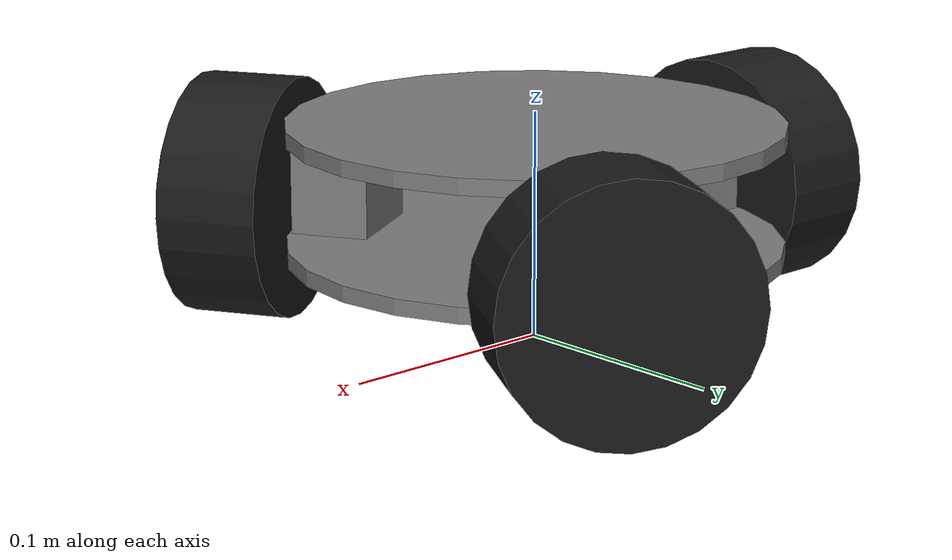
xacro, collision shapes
<?xml version="1.0"?>
<robot xmlns:xacro="http://www.ros.org/wiki/xacro" name="lekiwi_base">

  <!-- Standalone LeKiwi base (no arm) -->
  <xacro:arg name="port" default="/dev/ttyACM0"/>
  <xacro:arg name="use_mock_hardware" default="false"/>

  <xacro:include filename="$(find lekiwi_description)/urdf/lekiwi_base.xacro" />
  <xacro:include filename="$(find lekiwi_description)/urdf/lekiwi_base.ros2_control.xacro" />

  <xacro:lekiwi_base/>

  <xacro:lekiwi_base_ros2_control port="$(arg port)" use_mock_hardware="$(arg use_mock_hardware)"/>

</robot>

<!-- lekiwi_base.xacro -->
<robot xmlns:xacro="http://www.ros.org/wiki/xacro">

  <!-- LeKiwi omni wheel base. Including this file defines the lekiwi_* materials and the
       lekiwi_base macro; no links are emitted until the macro is called. -->
  <xacro:include filename="$(find lekiwi_description)/urdf/materials.xacro" />

  <!-- Constants -->
  <xacro:property name="servo_offset" value="0.01011" /> <!-- axle is 10.11mm offset from top of servo -->

  <xacro:property name="wheel_radius" value="0.054"/>  <!-- 54mm radius = 108mm diameter -->
  <xacro:property name="wheel_depth" value="0.045"/>   <!-- 45mm thickness -->

  <xacro:property name="plate_radius" value="0.108"/>   <!-- 108mm base radius -->
  <xacro:property name="plate_height" value="0.007"/> <!-- Estimated base thickness -->

  <xacro:property name="motor_mount_inset" value="0.00425"/> <!-- Distance from the radius the mount is inset -->
  <xacro:property name="motor_mount_height" value="0.0455"/>
  <xacro:property name="motor_mount_width" value="0.0475"/>
  <xacro:property name="motor_mount_depth" value="0.0348"/>

  <!-- Drive Motors -->
  <xacro:macro name="lekiwi_motor" params="prefix name angle">
    <!-- Translation from base plate to motor -->
    <xacro:property name="x_mount" value="${(plate_radius - motor_mount_inset) * cos(angle)}"/>
    <xacro:property name="y_mount" value="${(plate_radius - motor_mount_inset) * sin(angle)}"/>

    <!-- Link representing the motor mount -->
    <link name="${prefix}${name}_motor">
      <visual>
        <origin xyz="${-motor_mount_depth} ${motor_mount_width/2} 0" rpy="${pi/2} 0 0"/>
        <material name="lekiwi_gray"/>
        <geometry>
          <mesh filename="package://lekiwi_description/meshes/drive_motor_mount_v2.stl" scale="0.001 0.001 0.001"/>
        </geometry>
      </visual>

      <visual>
        <origin xyz="0.0027 0 ${servo_offset}" rpy="0 ${-pi/2} ${-pi/2}"/>
        <geometry>
          <mesh filename="package://lekiwi_description/meshes/st3215.dae"/>
        </geometry>
      </visual>

      <collision>
        <origin xyz="${-motor_mount_depth/2} 0 ${motor_mount_height/2}" rpy="0 0 0"/>
        <geometry>
          <box size="${motor_mount_depth} ${motor_mount_width} ${motor_mount_height}"/>
        </geometry>
      </collision>

      <!-- TODO: collison -->
      <!-- TODO: inertial -->
    </link>

    <joint name="${prefix}${name}_motor_joint" type="fixed">
      <parent link="${prefix}base_link"/>
      <child link="${prefix}${name}_motor"/>
      <origin xyz="${x_mount} ${y_mount} 0" rpy="0 0 ${angle}"/>
    </joint>

    <!-- Link representing the wheel -->
    <link name="${prefix}${name}_wheel_link">
      <visual>
        <origin xyz="0 0.003 0" rpy="${-pi/2} 0 0"/>
        <material name="lekiwi_black"/>
        <geometry>
          <mesh filename="package://lekiwi_description/meshes/omni_wheel_xl.stl" scale="0.001 0.001 0.001"/>
        </geometry>
      </visual>

      <visual>
        <origin xyz="0 0 0" rpy="0 0 0"/>
        <geometry>
          <mesh filename="package://lekiwi_description/meshes/st3215_horn_front.dae"/>
        </geometry>
      </visual>

      <collision>
        <origin xyz="0 ${(wheel_depth/2) + 0.003} 0" rpy="${-pi/2} 0 0"/>
        <geometry>
          <cylinder radius="${wheel_radius}" length="${wheel_depth}"/>
        </geometry>
      </collision>

    </link>

    <joint name="${prefix}${name}_wheel_joint" type="continuous">
      <parent link="${prefix}${name}_motor"/>
      <child link="${prefix}${name}_wheel_link"/>

      <!-- Add PI/2 to angle so wheel +X points in rolling direction (tangent), not radial -->
      <origin xyz="0.0027 0 ${servo_offset}" rpy="0 0 ${-pi/2}"/>
      <axis xyz="0 1 0"/>  <!-- Rotation around local Y axis (perpendicular to wheel) -->
      <limit effort="10.0" velocity="10.0"/>
      <dynamics damping="0.1" friction="0.1"/>
    </joint>
  </xacro:macro>

  <!-- The base. arm_mount is an empty frame on top of the upper plate where a manipulator
       attaches; arm_mount_xyz/rpy are relative to upper_plate_link (center of its top surface). -->
  <xacro:macro name="lekiwi_base" params="prefix:='' arm_mount_xyz:='0.02 0 0' arm_mount_rpy:='0 0 0'">

    <!-- Base Link: Bottom plate of the LeKiwi. Origin is the center of the top surface -->
    <link name="${prefix}base_link">
      <visual>
        <origin xyz="0 0 0" rpy="0 0 ${-pi/2}"/>
        <geometry>
          <mesh filename="package://lekiwi_description/meshes/base_plate_layer1.stl" scale="0.001 0.001 0.001"/>
        </geometry>
        <material name="lekiwi_gray"/>
      </visual>
      <collision>
        <origin xyz="0 0 ${-plate_height/2}" rpy="0 0 0"/>
        <geometry>
          <cylinder radius="${plate_radius}" length="${plate_height}"/>
        </geometry>
      </collision>
      <inertial>
        <origin xyz="0 0 ${-plate_height/2}" rpy="0 0 0"/>
        <mass value="2.0"/>
        <inertia ixx="0.0226" ixy="0.0" ixz="0.0"
                 iyy="0.0226" iyz="0.0"
                 izz="0.0450"/>
      </inertial>
    </link>

    <xacro:lekiwi_motor prefix="${prefix}" name="left" angle="${pi/3}"/>
    <xacro:lekiwi_motor prefix="${prefix}" name="rear" angle="${pi}"/>
    <xacro:lekiwi_motor prefix="${prefix}" name="right" angle="${-pi/3}"/>

    <!-- Base footprint (for navigation) -->
    <link name="${prefix}base_footprint"/>

    <joint name="${prefix}base_footprint_joint" type="fixed">
      <parent link="${prefix}base_footprint"/>
      <child link="${prefix}base_link"/>
      <origin xyz="0 0 ${wheel_radius - servo_offset}" rpy="0 0 0"/>
    </joint>

    <!-- Upper plate link -->
    <link name="${prefix}upper_plate_link">
      <!-- Upper Plate -->
      <visual>
        <origin xyz="0 0 0" rpy="0 0 ${-pi/2}"/>
        <geometry>
          <mesh filename="package://lekiwi_description/meshes/base_plate_layer2.stl" scale="0.001 0.001 0.001"/>
        </geometry>
        <material name="lekiwi_gray"/>
      </visual>
      <collision>
        <origin xyz="0 0 ${-plate_height/2}" rpy="0 0 0"/>
        <geometry>
          <cylinder radius="${plate_radius}" length="${plate_height}"/>
        </geometry>
      </collision>
      <inertial>
        <origin xyz="0 0 ${-plate_height/2}" rpy="0 0 0"/>
        <mass value="2.0"/>
        <inertia ixx="0.0226" ixy="0.0" ixz="0.0"
                 iyy="0.0226" iyz="0.0"
                 izz="0.0450"/>
      </inertial>
    </link>

    <joint name="${prefix}upper_plate_joint" type="fixed">
      <parent link="${prefix}base_link"/>
      <child link="${prefix}upper_plate_link"/>
      <origin xyz="0 0 ${motor_mount_height + plate_height}" rpy="0 0 0"/>
    </joint>

    <!-- Arm mount -->
    <link name="${prefix}arm_mount"/>

    <joint name="${prefix}arm_mount_joint" type="fixed">
      <parent link="${prefix}upper_plate_link"/>
      <child link="${prefix}arm_mount"/>
      <origin xyz="${arm_mount_xyz}" rpy="${arm_mount_rpy}"/>
    </joint>

  </xacro:macro>

</robot>

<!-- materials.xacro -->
<robot xmlns:xacro="http://www.ros.org/wiki/xacro">

  <material name="lekiwi_black">
    <color rgba="0.1 0.1 0.1 1.0"/>
  </material>

  <material name="lekiwi_white">
    <color rgba="0.9 0.9 0.9 1.0"/>
  </material>

  <material name="lekiwi_gray">
    <color rgba="0.5 0.5 0.5 1.0"/>
  </material>

  <material name="lekiwi_red">
    <color rgba="0.8 0.0 0.0 1.0"/>
  </material>

  <material name="lekiwi_green">
    <color rgba="0.0 0.8 0.0 1.0"/>
  </material>

  <material name="lekiwi_blue">
    <color rgba="0.0 0.0 0.8 1.0"/>
  </material>

  <material name="lekiwi_navy_blue">
    <color rgba="0.0 0.0 0.5 1.0"/>
  </material>

  <material name="lekiwi_yellow">
    <color rgba="0.8 0.8 0.0 1.0"/>
  </material>

</robot>
